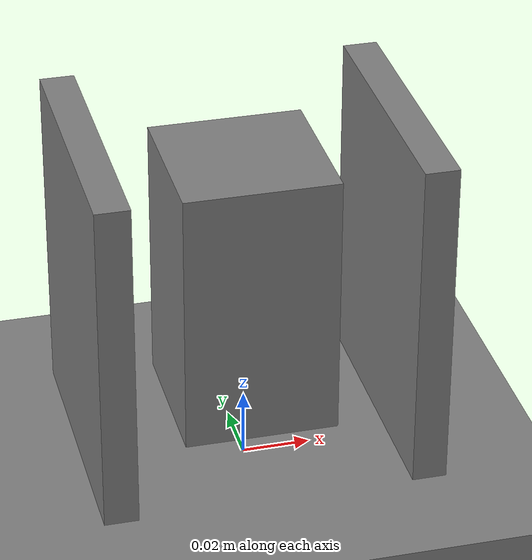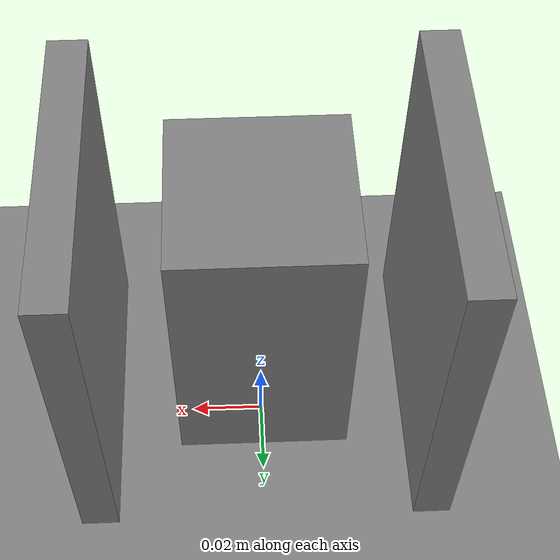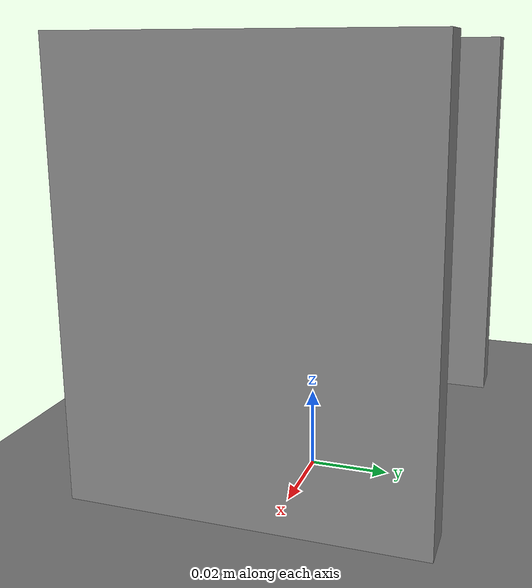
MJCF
<mujoco model="sim_001">
  <option gravity="0 0 -9.81" integrator="RK4" timestep="0.002"/>
  <worldbody>
    <camera name="agentview" pos="0 -0.55 0.42" xyaxes="1 0 0 0 0.65 0.76"/>
    <body name="table" pos="0 0 0">
      <geom name="table_top" type="box" size="0.20 0.20 0.01" pos="0 0 0"/>
      <body name="opening_left" pos="-0.04500000 0 0.06"><geom type="box" size="0.00500000 0.04000000 0.05"/></body>
      <body name="opening_right" pos="0.04500000 0 0.06"><geom type="box" size="0.00500000 0.04000000 0.05"/></body>
    </body>
    <body name="object" pos="0 0 0.06000000" quat="1 0 0 0">
      <freejoint/>
      <geom name="object_geom" type="box" size="0.02250000 0.02250000 0.04000000"
            mass="0.20000000" friction="0.6 0.01 0.001"/>
    </body>
  </worldbody>
</mujoco>
